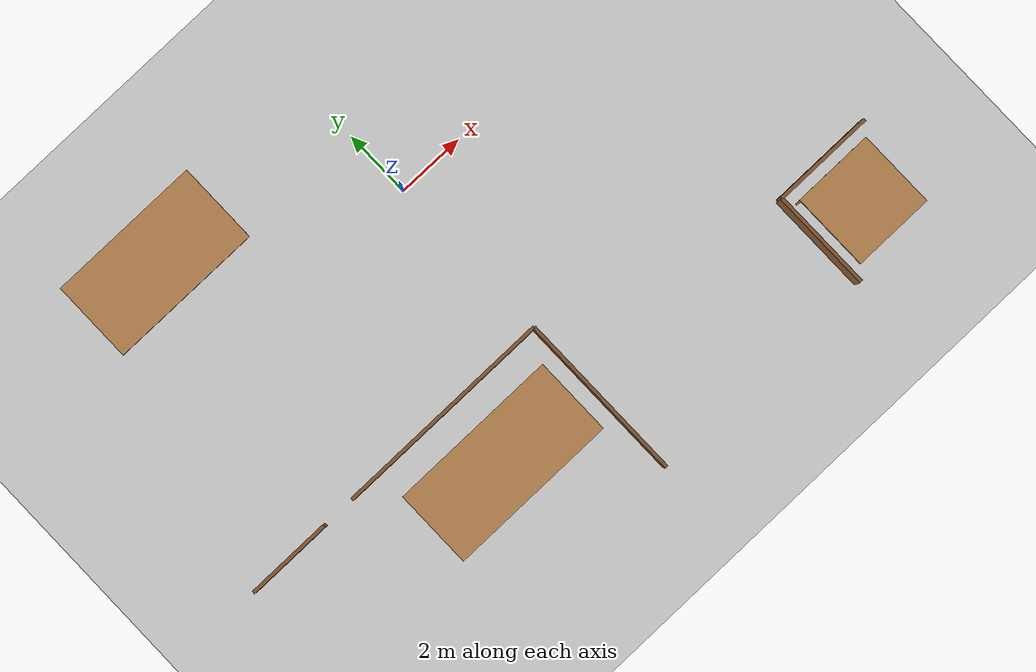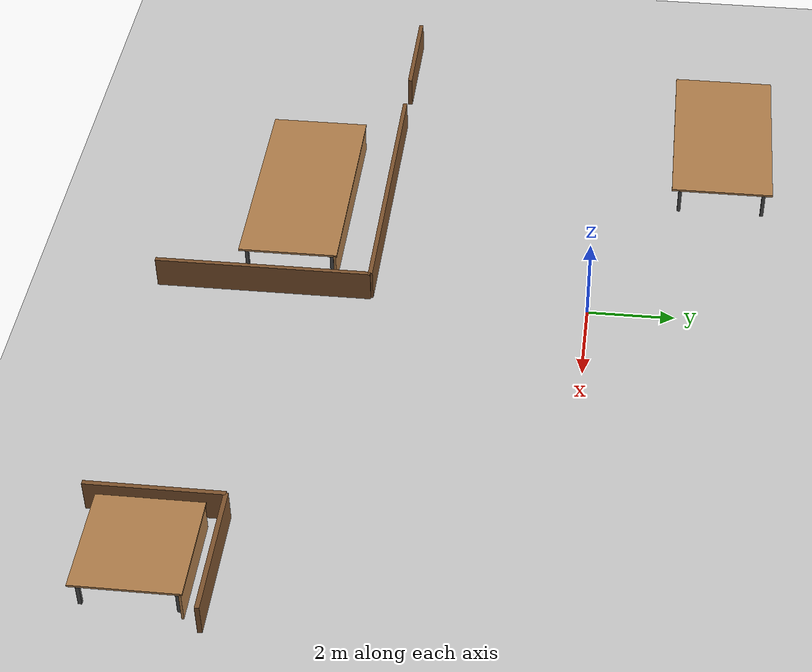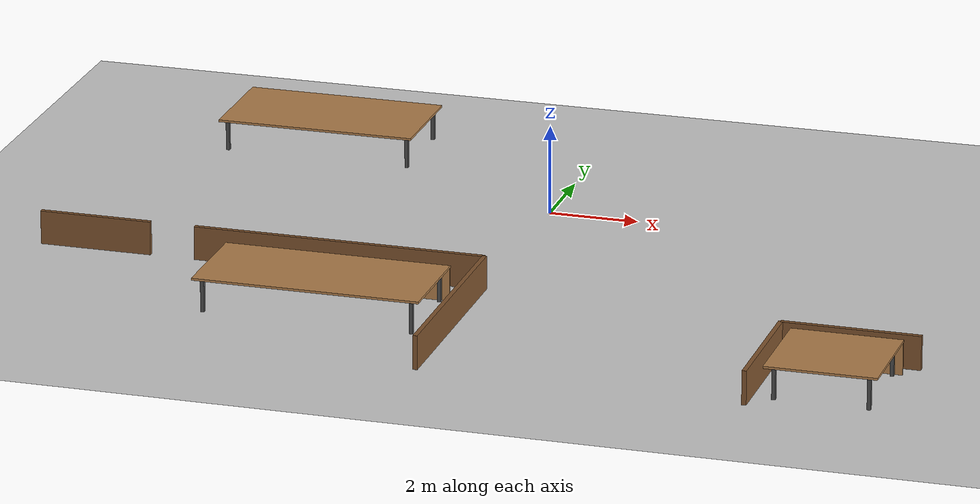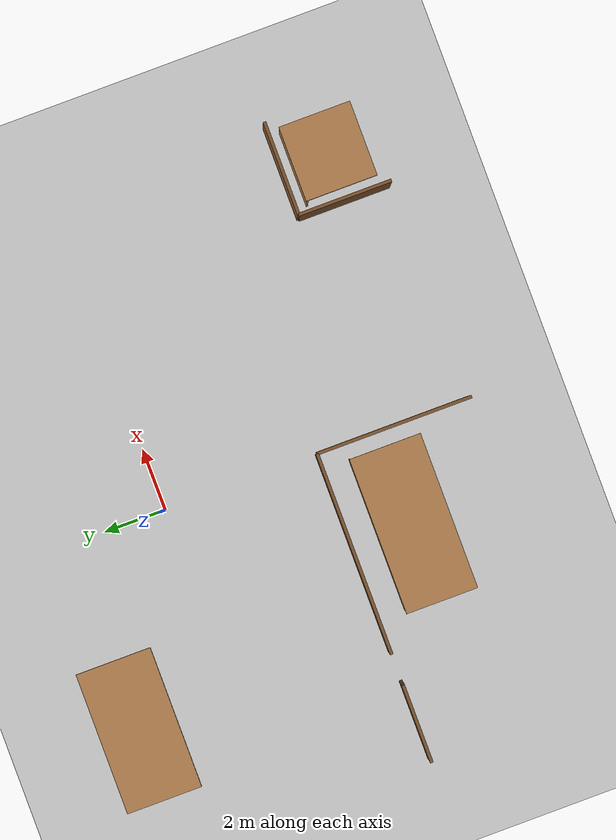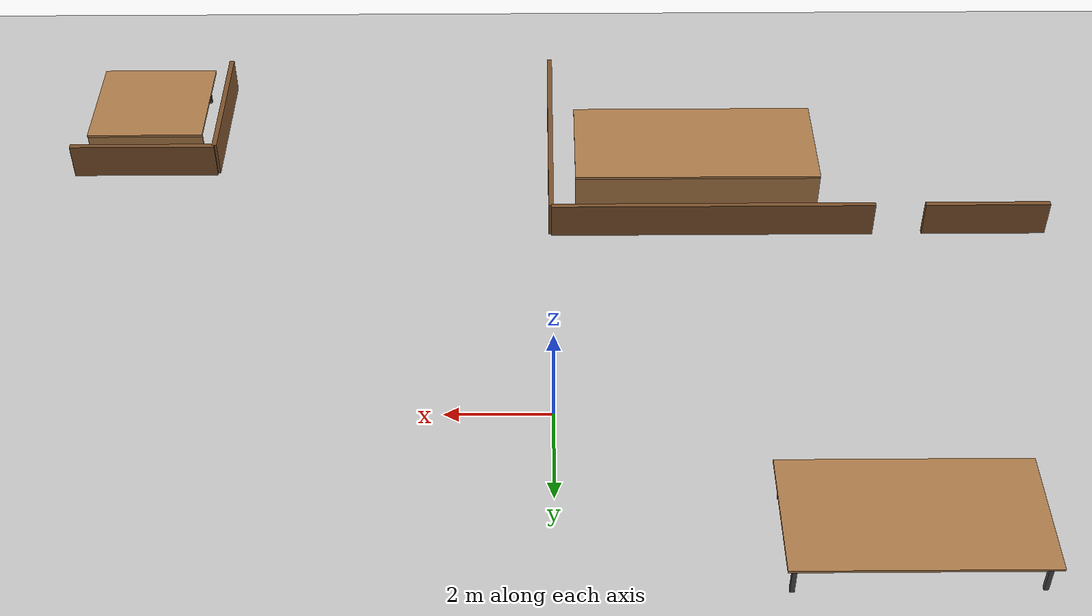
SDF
<sdf version="1.7">
 <world name="shelfa_library_world">
  <include><uri>model://sun</uri></include>
  <include><uri>model://ground_plane</uri></include>
  <model name="table_on_left">
   <static>true</static>
   <pose>-6.0 3.0 0 0 0 0</pose>
   <link name="tabletop">
    <pose>0 0 0.73 0 0 0</pose>
    <visual name="vis">
     <geometry><box><size>4.5 2.4 0.05</size></box></geometry>
     <material><script><name>Gazebo/Wood</name></script></material>
    </visual>
    <collision name="col"><geometry><box><size>4.5 2.4 0.05</size></box></geometry></collision>
   </link>
   <link name="leg_fl">
    <pose>-2.1 -1.0 0.36 0 0 0</pose>
    <visual name="vis">
     <geometry><box><size>0.08 0.08 0.72</size></box></geometry>
     <material><script><name>Gazebo/DarkGrey</name></script></material>
    </visual>
    <collision name="col"><geometry><box><size>0.08 0.08 0.72</size></box></geometry></collision>
   </link>
   <link name="leg_fr">
    <pose>2.1 -1.0 0.36 0 0 0</pose>
    <visual name="vis">
     <geometry><box><size>0.08 0.08 0.72</size></box></geometry>
     <material><script><name>Gazebo/DarkGrey</name></script></material>
    </visual>
    <collision name="col"><geometry><box><size>0.08 0.08 0.72</size></box></geometry></collision>
   </link>
   <link name="leg_bl">
    <pose>-2.1 1.0 0.36 0 0 0</pose>
    <visual name="vis">
     <geometry><box><size>0.08 0.08 0.72</size></box></geometry>
     <material><script><name>Gazebo/DarkGrey</name></script></material>
    </visual>
    <collision name="col"><geometry><box><size>0.08 0.08 0.72</size></box></geometry></collision>
   </link>
   <link name="leg_br">
    <pose>2.1 1.0 0.36 0 0 0</pose>
    <visual name="vis">
     <geometry><box><size>0.08 0.08 0.72</size></box></geometry>
     <material><script><name>Gazebo/DarkGrey</name></script></material>
    </visual>
    <collision name="col"><geometry><box><size>0.08 0.08 0.72</size></box></geometry></collision>
   </link>
  </model>
  <model name="library_counter_desk">
   <static>true</static>
   <pose>-3.0 -7.0 0 0 0 3.14159</pose>
   <link name="countertop">
    <pose>0 0 0.75 0 0 0</pose>
    <visual name="vis">
     <geometry><box><size>5.0 2.3 0.05</size></box></geometry>
     <material><script><name>Gazebo/Wood</name></script></material>
    </visual>
    <collision name="col"><geometry><box><size>5.0 2.3 0.05</size></box></geometry></collision>
   </link>
   <link name="front_panel">
    <pose>0 -1.1 0.375 0 0 0</pose>
    <visual name="vis">
     <geometry><box><size>5.0 0.05 0.75</size></box></geometry>
     <material><script><name>Gazebo/Wood</name></script></material>
    </visual>
    <collision name="col"><geometry><box><size>5.0 0.05 0.75</size></box></geometry></collision>
   </link>
   <link name="leg_fl">
    <pose>-2.3 -1.0 0.36 0 0 0</pose>
    <visual name="vis">
     <geometry><box><size>0.08 0.08 0.72</size></box></geometry>
     <material><script><name>Gazebo/DarkGrey</name></script></material>
    </visual>
    <collision name="col"><geometry><box><size>0.08 0.08 0.72</size></box></geometry></collision>
   </link>
   <link name="leg_fr">
    <pose>2.3 -1.0 0.36 0 0 0</pose>
    <visual name="vis">
     <geometry><box><size>0.08 0.08 0.72</size></box></geometry>
     <material><script><name>Gazebo/DarkGrey</name></script></material>
    </visual>
    <collision name="col"><geometry><box><size>0.08 0.08 0.72</size></box></geometry></collision>
   </link>
   <link name="leg_bl">
    <pose>-2.3 1.0 0.36 0 0 0</pose>
    <visual name="vis">
     <geometry><box><size>0.08 0.08 0.72</size></box></geometry>
     <material><script><name>Gazebo/DarkGrey</name></script></material>
    </visual>
    <collision name="col"><geometry><box><size>0.08 0.08 0.72</size></box></geometry></collision>
   </link>
   <link name="leg_br">
    <pose>2.3 1.0 0.36 0 0 0</pose>
    <visual name="vis">
     <geometry><box><size>0.08 0.08 0.72</size></box></geometry>
     <material><script><name>Gazebo/DarkGrey</name></script></material>
    </visual>
    <collision name="col"><geometry><box><size>0.08 0.08 0.72</size></box></geometry></collision>
   </link>
  </model>
  <model name="library_takeout_desk">
   <static>true</static>
   <pose>8.5 -8.5 0 0 0 3.14159</pose>
   <link name="tabletop">
    <pose>0 0 0.73 0 0 0</pose>
    <visual name="vis">
     <geometry><box><size>2.4 2.3 0.05</size></box></geometry>
     <material><script><name>Gazebo/Wood</name></script></material>
    </visual>
    <collision name="col"><geometry><box><size>2.4 2.3 0.05</size></box></geometry></collision>
   </link>
   <link name="front_panel">
    <pose>0 -1.1 0.375 0 0 0</pose>
    <visual name="vis">
     <geometry><box><size>2.4 0.05 0.75</size></box></geometry>
     <material><script><name>Gazebo/Wood</name></script></material>
    </visual>
    <collision name="col"><geometry><box><size>2.4 0.05 0.75</size></box></geometry></collision>
   </link>
   <link name="leg_fl">
    <pose>-1.0 -1.0 0.36 0 0 0</pose>
    <visual name="vis">
     <geometry><box><size>0.08 0.08 0.72</size></box></geometry>
     <material><script><name>Gazebo/DarkGrey</name></script></material>
    </visual>
    <collision name="col"><geometry><box><size>0.08 0.08 0.72</size></box></geometry></collision>
   </link>
   <link name="leg_fr">
    <pose>1.0 -1.0 0.36 0 0 0</pose>
    <visual name="vis">
     <geometry><box><size>0.08 0.08 0.72</size></box></geometry>
     <material><script><name>Gazebo/DarkGrey</name></script></material>
    </visual>
    <collision name="col"><geometry><box><size>0.08 0.08 0.72</size></box></geometry></collision>
   </link>
   <link name="leg_bl">
    <pose>-1.0 1.0 0.36 0 0 0</pose>
    <visual name="vis">
     <geometry><box><size>0.08 0.08 0.72</size></box></geometry>
     <material><script><name>Gazebo/DarkGrey</name></script></material>
    </visual>
    <collision name="col"><geometry><box><size>0.08 0.08 0.72</size></box></geometry></collision>
   </link>
   <link name="leg_br">
    <pose>1.0 1.0 0.36 0 0 0</pose>
    <visual name="vis">
     <geometry><box><size>0.08 0.08 0.72</size></box></geometry>
     <material><script><name>Gazebo/DarkGrey</name></script></material>
    </visual>
    <collision name="col"><geometry><box><size>0.08 0.08 0.72</size></box></geometry></collision>
   </link>
  </model>
  <model name="barrier_a">
   <static>true</static>
   <pose>7.0 -8.5 0 0 0 0</pose>
   <link name="wall">
    <pose>0 0 0.375 0 0 0</pose>
    <visual name="vis">
     <geometry><box><size>0.1 3.0 0.75</size></box></geometry>
     <material><script><name>Gazebo/Brown</name></script></material>
    </visual>
    <collision name="col"><geometry><box><size>0.1 3.0 0.75</size></box></geometry></collision>
   </link>
  </model>
  <model name="barrier_b">
   <static>true</static>
   <pose>8.5 -7.0 0 0 0 0</pose>
   <link name="wall">
    <pose>0 0 0.375 0 0 0</pose>
    <visual name="vis">
     <geometry><box><size>3.0 0.1 0.75</size></box></geometry>
     <material><script><name>Gazebo/Brown</name></script></material>
    </visual>
    <collision name="col"><geometry><box><size>3.0 0.1 0.75</size></box></geometry></collision>
   </link>
  </model>
  <model name="barrier_c_left">
   <static>true</static>
   <pose>-8.75 -5.0 0 0 0 0</pose>
   <link name="wall">
    <pose>0 0 0.375 0 0 0</pose>
    <visual name="vis">
     <geometry><box><size>2.5 0.1 0.75</size></box></geometry>
     <material><script><name>Gazebo/Brown</name></script></material>
    </visual>
    <collision name="col"><geometry><box><size>2.5 0.1 0.75</size></box></geometry></collision>
   </link>
  </model>
  <model name="barrier_c_right">
   <static>true</static>
   <pose>-3.25 -5.0 0 0 0 0</pose>
   <link name="wall">
    <pose>0 0 0.375 0 0 0</pose>
    <visual name="vis">
     <geometry><box><size>6.5 0.1 0.75</size></box></geometry>
     <material><script><name>Gazebo/Brown</name></script></material>
    </visual>
    <collision name="col"><geometry><box><size>6.5 0.1 0.75</size></box></geometry></collision>
   </link>
  </model>
  <model name="barrier_d">
   <static>true</static>
   <pose>0.0 -7.5 0 0 0 0</pose>
   <link name="wall">
    <pose>0 0 0.375 0 0 0</pose>
    <visual name="vis">
     <geometry><box><size>0.1 5.0 0.75</size></box></geometry>
     <material><script><name>Gazebo/Brown</name></script></material>
    </visual>
    <collision name="col"><geometry><box><size>0.1 5.0 0.75</size></box></geometry></collision>
   </link>
  </model>
  <model name="anti_tunneling_bookshelves">
   <static>true</static>
   <link name="shelf_left_a_block">
    <pose>-0.45 2.4 0.5 0 0 0</pose>
    <collision name="col"><geometry><box><size>0.5 1.0 1.0</size></box></geometry></collision>
   </link>
   <link name="shelf_left_b_block">
    <pose>0.45 1.7 0.5 0 0 0</pose>
    <collision name="col"><geometry><box><size>0.5 1.0 1.0</size></box></geometry></collision>
   </link>
   <link name="shelf_center_a_block">
    <pose>3.05 2.4 0.5 0 0 0</pose>
    <collision name="col"><geometry><box><size>0.5 1.0 1.0</size></box></geometry></collision>
   </link>
   <link name="shelf_center_b_block">
    <pose>3.95 1.7 0.5 0 0 0</pose>
    <collision name="col"><geometry><box><size>0.5 1.0 1.0</size></box></geometry></collision>
   </link>
   <link name="shelf_right_a_block">
    <pose>6.55 2.4 0.5 0 0 0</pose>
    <collision name="col"><geometry><box><size>0.5 1.0 1.0</size></box></geometry></collision>
   </link>
   <link name="shelf_right_b_block">
    <pose>7.45 1.7 0.5 0 0 0</pose>
    <collision name="col"><geometry><box><size>0.5 1.0 1.0</size></box></geometry></collision>
   </link>
  </model>
 </world>
</sdf>
